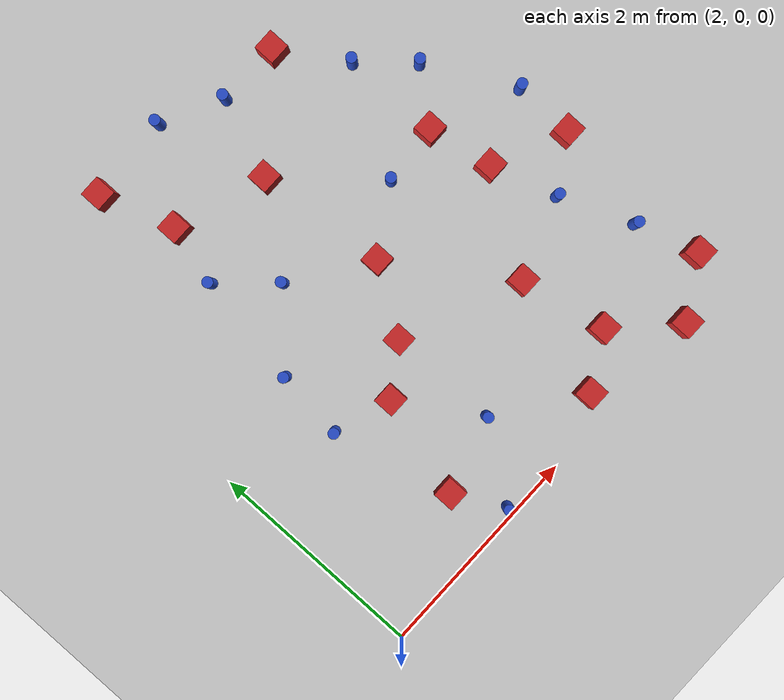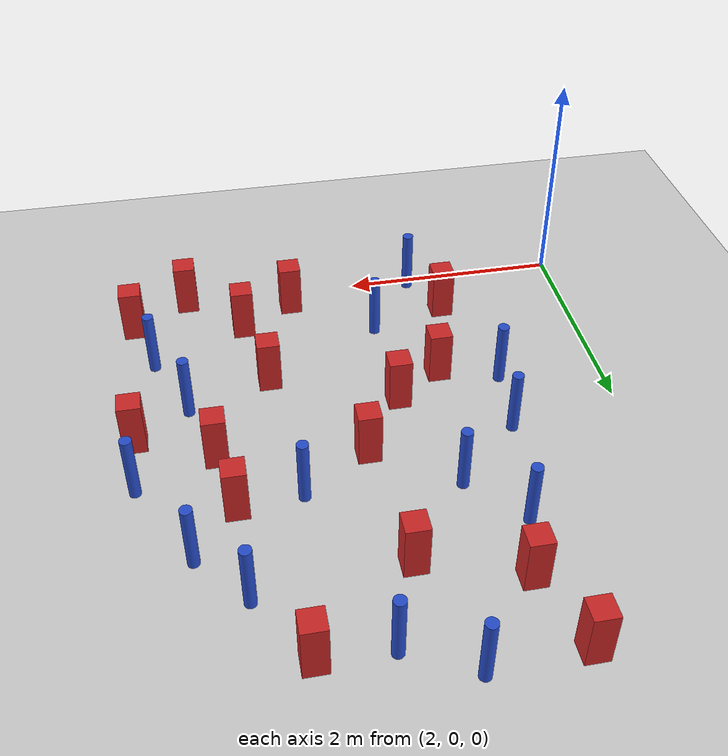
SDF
<sdf version="1.6">
 <world name="default">
  <model name="ground_plane">
   <static>1</static>
   <link name="link">
    <collision name="collision">
     <geometry><plane><normal>0 0 1</normal><size>100 100</size></plane></geometry>
     <surface><friction><ode><mu>100</mu><mu2>50</mu2></ode></friction></surface>
    </collision>
    <visual name="visual">
     <cast_shadows>0</cast_shadows>
     <geometry><plane><normal>0 0 1</normal><size>100 100</size></plane></geometry>
     <material>
      <ambient>1.0 1.0 1.0 1.0</ambient>
      <diffuse>0.8 0.8 0.8 1.0</diffuse>
      <specular>0.01 0.01 0.01 1.000000</specular>
     </material>
    </visual>
   </link>
  </model>
  <model name="pole_obstacle9">
   <static>true</static>
   <pose>3.17217486479 3.26888968128 2.88873142074e-08 -9.90536690232e-09 4.6021994898e-07 -1.20965994968e-07</pose>
   <link name="link">
    <pose>0 0 0.3 0 -0 0</pose>
    <inertial>
     <mass>1</mass>
     <inertia><ixx>0.145833</ixx><ixy>0</ixy><ixz>0</ixz><iyy>0.145833</iyy><iyz>0</iyz><izz>0.125</izz></inertia>
    </inertial>
    <collision name="collision">
     <geometry><cylinder><radius>0.05</radius><length>.6</length></cylinder></geometry>
    </collision>
    <visual name="visual">
     <geometry><cylinder><radius>0.05</radius><length>.6</length></cylinder></geometry>
     <material>
      <script><name>Gazebo/Blue</name><uri>file://media/materials/scripts/gazebo.material</uri></script>
     </material>
    </visual>
   </link>
  </model>
  <model name="square_post_obstacle22">
   <static>true</static>
   <pose>5.52658757177 2.16464236272 8.22691968438e-08 7.2212513382e-06 -7.54495500217e-07 2.29674213826e-05</pose>
   <link name="link">
    <pose>0 0 0.25 0 -0 0</pose>
    <inertial>
     <mass>100</mass>
     <inertia>
      <ixx>0.166667</ixx>
      <ixy>0</ixy>
      <ixz>0</ixz>
      <iyy>0.166667</iyy>
      <iyz>0</iyz>
      <izz>0.166667</izz>
     </inertia>
    </inertial>
    <collision name="collision"><geometry><box><size>.2 .2 .5</size></box></geometry></collision>
    <visual name="visual">
     <geometry><box><size>.2 .2 .5</size></box></geometry>
     <material>
      <script><name>Gazebo/Red</name><uri>file://media/materials/scripts/gazebo.material</uri></script>
     </material>
    </visual>
   </link>
  </model>
  <model name="pole_obstacle37">
   <static>true</static>
   <pose>4.43301625124 4.24000492616 2.88873142074e-08 -9.90536690842e-09 4.60219948965e-07 -1.20965994976e-07</pose>
   <link name="link">
    <pose>0 0 0.3 0 -0 0</pose>
    <inertial>
     <mass>1</mass>
     <inertia><ixx>0.145833</ixx><ixy>0</ixy><ixz>0</ixz><iyy>0.145833</iyy><iyz>0</iyz><izz>0.125</izz></inertia>
    </inertial>
    <collision name="collision">
     <geometry><cylinder><radius>0.05</radius><length>.6</length></cylinder></geometry>
    </collision>
    <visual name="visual">
     <geometry><cylinder><radius>0.05</radius><length>.6</length></cylinder></geometry>
     <material>
      <script><name>Gazebo/Blue</name><uri>file://media/materials/scripts/gazebo.material</uri></script>
     </material>
    </visual>
   </link>
  </model>
  <model name="pole_obstacle51">
   <static>true</static>
   <pose>5.99897427531 0.909110615569 2.88873142074e-08 -9.90536689837e-09 4.60219948989e-07 -1.2096599496e-07</pose>
   <link name="link">
    <pose>0 0 0.3 0 -0 0</pose>
    <inertial>
     <mass>1</mass>
     <inertia><ixx>0.145833</ixx><ixy>0</ixy><ixz>0</ixz><iyy>0.145833</iyy><iyz>0</iyz><izz>0.125</izz></inertia>
    </inertial>
    <collision name="collision">
     <geometry><cylinder><radius>0.05</radius><length>.6</length></cylinder></geometry>
    </collision>
    <visual name="visual">
     <geometry><cylinder><radius>0.05</radius><length>.6</length></cylinder></geometry>
     <material>
      <script><name>Gazebo/Blue</name><uri>file://media/materials/scripts/gazebo.material</uri></script>
     </material>
    </visual>
   </link>
  </model>
  <model name="pole_obstacle67">
   <static>true</static>
   <pose>3.88883415241 4.51918012956 2.88873142074e-08 -9.90536689859e-09 4.60219948989e-07 -1.20965994961e-07</pose>
   <link name="link">
    <pose>0 0 0.3 0 -0 0</pose>
    <inertial>
     <mass>1</mass>
     <inertia><ixx>0.145833</ixx><ixy>0</ixy><ixz>0</ixz><iyy>0.145833</iyy><iyz>0</iyz><izz>0.125</izz></inertia>
    </inertial>
    <collision name="collision">
     <geometry><cylinder><radius>0.05</radius><length>.6</length></cylinder></geometry>
    </collision>
    <visual name="visual">
     <geometry><cylinder><radius>0.05</radius><length>.6</length></cylinder></geometry>
     <material>
      <script><name>Gazebo/Blue</name><uri>file://media/materials/scripts/gazebo.material</uri></script>
     </material>
    </visual>
   </link>
  </model>
  <model name="square_post_obstacle61">
   <static>true</static>
   <pose>3.10391664014 4.47095767798 8.22691968438e-08 7.2212513382e-06 -7.54495500217e-07 2.29674213826e-05</pose>
   <link name="link">
    <pose>0 0 0.25 0 -0 0</pose>
    <inertial>
     <mass>100</mass>
     <inertia>
      <ixx>0.166667</ixx>
      <ixy>0</ixy>
      <ixz>0</ixz>
      <iyy>0.166667</iyy>
      <iyz>0</iyz>
      <izz>0.166667</izz>
     </inertia>
    </inertial>
    <collision name="collision"><geometry><box><size>.2 .2 .5</size></box></geometry></collision>
    <visual name="visual">
     <geometry><box><size>.2 .2 .5</size></box></geometry>
     <material>
      <script><name>Gazebo/Red</name><uri>file://media/materials/scripts/gazebo.material</uri></script>
     </material>
    </visual>
   </link>
  </model>
  <model name="pole_obstacle74">
   <static>true</static>
   <pose>6.19955153348 2.42457569844 2.88873142074e-08 -9.90536690245e-09 4.6021994898e-07 -1.20965994966e-07</pose>
   <link name="link">
    <pose>0 0 0.3 0 -0 0</pose>
    <inertial>
     <mass>1</mass>
     <inertia><ixx>0.145833</ixx><ixy>0</ixy><ixz>0</ixz><iyy>0.145833</iyy><iyz>0</iyz><izz>0.125</izz></inertia>
    </inertial>
    <collision name="collision">
     <geometry><cylinder><radius>0.05</radius><length>.6</length></cylinder></geometry>
    </collision>
    <visual name="visual">
     <geometry><cylinder><radius>0.05</radius><length>.6</length></cylinder></geometry>
     <material>
      <script><name>Gazebo/Blue</name><uri>file://media/materials/scripts/gazebo.material</uri></script>
     </material>
    </visual>
   </link>
  </model>
  <model name="pole_obstacle75">
   <static>true</static>
   <pose>5.77782669383 3.20611365357 2.88873142074e-08 -9.90536690245e-09 4.6021994898e-07 -1.20965994966e-07</pose>
   <link name="link">
    <pose>0 0 0.3 0 -0 0</pose>
    <inertial>
     <mass>1</mass>
     <inertia><ixx>0.145833</ixx><ixy>0</ixy><ixz>0</ixz><iyy>0.145833</iyy><iyz>0</iyz><izz>0.125</izz></inertia>
    </inertial>
    <collision name="collision">
     <geometry><cylinder><radius>0.05</radius><length>.6</length></cylinder></geometry>
    </collision>
    <visual name="visual">
     <geometry><cylinder><radius>0.05</radius><length>.6</length></cylinder></geometry>
     <material>
      <script><name>Gazebo/Blue</name><uri>file://media/materials/scripts/gazebo.material</uri></script>
     </material>
    </visual>
   </link>
  </model>
  <model name="square_post_obstacle66">
   <static>true</static>
   <pose>3.32431469081 3.80321081166 8.22691968438e-08 7.2212513382e-06 -7.54495500217e-07 2.29674213826e-05</pose>
   <link name="link">
    <pose>0 0 0.25 0 -0 0</pose>
    <inertial>
     <mass>100</mass>
     <inertia>
      <ixx>0.166667</ixx>
      <ixy>0</ixy>
      <ixz>0</ixz>
      <iyy>0.166667</iyy>
      <iyz>0</iyz>
      <izz>0.166667</izz>
     </inertia>
    </inertial>
    <collision name="collision"><geometry><box><size>.2 .2 .5</size></box></geometry></collision>
    <visual name="visual">
     <geometry><box><size>.2 .2 .5</size></box></geometry>
     <material>
      <script><name>Gazebo/Red</name><uri>file://media/materials/scripts/gazebo.material</uri></script>
     </material>
    </visual>
   </link>
  </model>
  <model name="square_post_obstacle72">
   <static>true</static>
   <pose>4.66032250065 0.225684437883 8.22691968438e-08 7.2212513382e-06 -7.54495500217e-07 2.29674213826e-05</pose>
   <link name="link">
    <pose>0 0 0.25 0 -0 0</pose>
    <inertial>
     <mass>100</mass>
     <inertia>
      <ixx>0.166667</ixx>
      <ixy>0</ixy>
      <ixz>0</ixz>
      <iyy>0.166667</iyy>
      <iyz>0</iyz>
      <izz>0.166667</izz>
     </inertia>
    </inertial>
    <collision name="collision"><geometry><box><size>.2 .2 .5</size></box></geometry></collision>
    <visual name="visual">
     <geometry><box><size>.2 .2 .5</size></box></geometry>
     <material>
      <script><name>Gazebo/Red</name><uri>file://media/materials/scripts/gazebo.material</uri></script>
     </material>
    </visual>
   </link>
  </model>
  <model name="pole_obstacle85">
   <static>true</static>
   <pose>5.72441869837 1.56464164884 2.88873142074e-08 -9.90536689445e-09 4.60219948999e-07 -1.20965994956e-07</pose>
   <link name="link">
    <pose>0 0 0.3 0 -0 0</pose>
    <inertial>
     <mass>1</mass>
     <inertia><ixx>0.145833</ixx><ixy>0</ixy><ixz>0</ixz><iyy>0.145833</iyy><iyz>0</iyz><izz>0.125</izz></inertia>
    </inertial>
    <collision name="collision">
     <geometry><cylinder><radius>0.05</radius><length>.6</length></cylinder></geometry>
    </collision>
    <visual name="visual">
     <geometry><cylinder><radius>0.05</radius><length>.6</length></cylinder></geometry>
     <material>
      <script><name>Gazebo/Blue</name><uri>file://media/materials/scripts/gazebo.material</uri></script>
     </material>
    </visual>
   </link>
  </model>
  <model name="square_post_obstacle74">
   <static>true</static>
   <pose>3.22321845449 0.540519343599 8.22691968438e-08 7.2212513382e-06 -7.54495500217e-07 2.29674213826e-05</pose>
   <link name="link">
    <pose>0 0 0.25 0 -0 0</pose>
    <inertial>
     <mass>100</mass>
     <inertia>
      <ixx>0.166667</ixx>
      <ixy>0</ixy>
      <ixz>0</ixz>
      <iyy>0.166667</iyy>
      <iyz>0</iyz>
      <izz>0.166667</izz>
     </inertia>
    </inertial>
    <collision name="collision"><geometry><box><size>.2 .2 .5</size></box></geometry></collision>
    <visual name="visual">
     <geometry><box><size>.2 .2 .5</size></box></geometry>
     <material>
      <script><name>Gazebo/Red</name><uri>file://media/materials/scripts/gazebo.material</uri></script>
     </material>
    </visual>
   </link>
  </model>
  <model name="pole_obstacle88">
   <static>true</static>
   <pose>3.58993427599 2.8113896839 2.88873142074e-08 -9.90536690232e-09 4.6021994898e-07 -1.20965994968e-07</pose>
   <link name="link">
    <pose>0 0 0.3 0 -0 0</pose>
    <inertial>
     <mass>1</mass>
     <inertia><ixx>0.145833</ixx><ixy>0</ixy><ixz>0</ixz><iyy>0.145833</iyy><iyz>0</iyz><izz>0.125</izz></inertia>
    </inertial>
    <collision name="collision">
     <geometry><cylinder><radius>0.05</radius><length>.6</length></cylinder></geometry>
    </collision>
    <visual name="visual">
     <geometry><cylinder><radius>0.05</radius><length>.6</length></cylinder></geometry>
     <material>
      <script><name>Gazebo/Blue</name><uri>file://media/materials/scripts/gazebo.material</uri></script>
     </material>
    </visual>
   </link>
  </model>
  <model name="square_post_obstacle75">
   <static>true</static>
   <pose>5.01402339134 4.21396589467 8.22691968438e-08 7.2212513382e-06 -7.54495500217e-07 2.29674213826e-05</pose>
   <link name="link">
    <pose>0 0 0.25 0 -0 0</pose>
    <inertial>
     <mass>100</mass>
     <inertia>
      <ixx>0.166667</ixx>
      <ixy>0</ixy>
      <ixz>0</ixz>
      <iyy>0.166667</iyy>
      <iyz>0</iyz>
      <izz>0.166667</izz>
     </inertia>
    </inertial>
    <collision name="collision"><geometry><box><size>.2 .2 .5</size></box></geometry></collision>
    <visual name="visual">
     <geometry><box><size>.2 .2 .5</size></box></geometry>
     <material>
      <script><name>Gazebo/Red</name><uri>file://media/materials/scripts/gazebo.material</uri></script>
     </material>
    </visual>
   </link>
  </model>
  <model name="square_post_obstacle78">
   <static>true</static>
   <pose>4.28103848278 2.34072129161 8.22691968438e-08 7.2212513382e-06 -7.54495500217e-07 2.29674213826e-05</pose>
   <link name="link">
    <pose>0 0 0.25 0 -0 0</pose>
    <inertial>
     <mass>100</mass>
     <inertia>
      <ixx>0.166667</ixx>
      <ixy>0</ixy>
      <ixz>0</ixz>
      <iyy>0.166667</iyy>
      <iyz>0</iyz>
      <izz>0.166667</izz>
     </inertia>
    </inertial>
    <collision name="collision"><geometry><box><size>.2 .2 .5</size></box></geometry></collision>
    <visual name="visual">
     <geometry><box><size>.2 .2 .5</size></box></geometry>
     <material>
      <script><name>Gazebo/Red</name><uri>file://media/materials/scripts/gazebo.material</uri></script>
     </material>
    </visual>
   </link>
  </model>
  <model name="square_post_obstacle87">
   <static>true</static>
   <pose>5.6533069034 0.025624023455 8.22691968438e-08 7.2212513382e-06 -7.54495500217e-07 2.29674213826e-05</pose>
   <link name="link">
    <pose>0 0 0.25 0 -0 0</pose>
    <inertial>
     <mass>100</mass>
     <inertia>
      <ixx>0.166667</ixx>
      <ixy>0</ixy>
      <ixz>0</ixz>
      <iyy>0.166667</iyy>
      <iyz>0</iyz>
      <izz>0.166667</izz>
     </inertia>
    </inertial>
    <collision name="collision"><geometry><box><size>.2 .2 .5</size></box></geometry></collision>
    <visual name="visual">
     <geometry><box><size>.2 .2 .5</size></box></geometry>
     <material>
      <script><name>Gazebo/Red</name><uri>file://media/materials/scripts/gazebo.material</uri></script>
     </material>
    </visual>
   </link>
  </model>
  <model name="square_post_obstacle92">
   <static>true</static>
   <pose>3.47308781892 1.4529752627 8.22691968438e-08 7.2212513382e-06 -7.54495500217e-07 2.29674213826e-05</pose>
   <link name="link">
    <pose>0 0 0.25 0 -0 0</pose>
    <inertial>
     <mass>100</mass>
     <inertia>
      <ixx>0.166667</ixx>
      <ixy>0</ixy>
      <ixz>0</ixz>
      <iyy>0.166667</iyy>
      <iyz>0</iyz>
      <izz>0.166667</izz>
     </inertia>
    </inertial>
    <collision name="collision"><geometry><box><size>.2 .2 .5</size></box></geometry></collision>
    <visual name="visual">
     <geometry><box><size>.2 .2 .5</size></box></geometry>
     <material>
      <script><name>Gazebo/Red</name><uri>file://media/materials/scripts/gazebo.material</uri></script>
     </material>
    </visual>
   </link>
  </model>
  <model name="square_post_obstacle93">
   <static>true</static>
   <pose>4.16055816285 3.52481038271 8.22691968438e-08 7.2212513382e-06 -7.54495500217e-07 2.29674213826e-05</pose>
   <link name="link">
    <pose>0 0 0.25 0 -0 0</pose>
    <inertial>
     <mass>100</mass>
     <inertia>
      <ixx>0.166667</ixx>
      <ixy>0</ixy>
      <ixz>0</ixz>
      <iyy>0.166667</iyy>
      <iyz>0</iyz>
      <izz>0.166667</izz>
     </inertia>
    </inertial>
    <collision name="collision"><geometry><box><size>.2 .2 .5</size></box></geometry></collision>
    <visual name="visual">
     <geometry><box><size>.2 .2 .5</size></box></geometry>
     <material>
      <script><name>Gazebo/Red</name><uri>file://media/materials/scripts/gazebo.material</uri></script>
     </material>
    </visual>
   </link>
  </model>
  <model name="square_post_obstacle97">
   <static>true</static>
   <pose>4.98667365181 1.29990823488 8.22691968438e-08 7.2212513382e-06 -7.54495500217e-07 2.29674213826e-05</pose>
   <link name="link">
    <pose>0 0 0.25 0 -0 0</pose>
    <inertial>
     <mass>100</mass>
     <inertia>
      <ixx>0.166667</ixx>
      <ixy>0</ixy>
      <ixz>0</ixz>
      <iyy>0.166667</iyy>
      <iyz>0</iyz>
      <izz>0.166667</izz>
     </inertia>
    </inertial>
    <collision name="collision"><geometry><box><size>.2 .2 .5</size></box></geometry></collision>
    <visual name="visual">
     <geometry><box><size>.2 .2 .5</size></box></geometry>
     <material>
      <script><name>Gazebo/Red</name><uri>file://media/materials/scripts/gazebo.material</uri></script>
     </material>
    </visual>
   </link>
  </model>
  <model name="pole_obstacle105">
   <static>true</static>
   <pose>5.39432647153 3.64181544365 2.88873142074e-08 -9.90536690245e-09 4.6021994898e-07 -1.20965994966e-07</pose>
   <link name="link">
    <pose>0 0 0.3 0 -0 0</pose>
    <inertial>
     <mass>1</mass>
     <inertia><ixx>0.145833</ixx><ixy>0</ixy><ixz>0</ixz><iyy>0.145833</iyy><iyz>0</iyz><izz>0.125</izz></inertia>
    </inertial>
    <collision name="collision">
     <geometry><cylinder><radius>0.05</radius><length>.6</length></cylinder></geometry>
    </collision>
    <visual name="visual">
     <geometry><cylinder><radius>0.05</radius><length>.6</length></cylinder></geometry>
     <material>
      <script><name>Gazebo/Blue</name><uri>file://media/materials/scripts/gazebo.material</uri></script>
     </material>
    </visual>
   </link>
  </model>
  <model name="pole_obstacle110">
   <static>true</static>
   <pose>3.00503588919 2.25406335023 2.88873142074e-08 -9.90536690232e-09 4.6021994898e-07 -1.20965994968e-07</pose>
   <link name="link">
    <pose>0 0 0.3 0 -0 0</pose>
    <inertial>
     <mass>1</mass>
     <inertia><ixx>0.145833</ixx><ixy>0</ixy><ixz>0</ixz><iyy>0.145833</iyy><iyz>0</iyz><izz>0.125</izz></inertia>
    </inertial>
    <collision name="collision">
     <geometry><cylinder><radius>0.05</radius><length>.6</length></cylinder></geometry>
    </collision>
    <visual name="visual">
     <geometry><cylinder><radius>0.05</radius><length>.6</length></cylinder></geometry>
     <material>
      <script><name>Gazebo/Blue</name><uri>file://media/materials/scripts/gazebo.material</uri></script>
     </material>
    </visual>
   </link>
  </model>
  <model name="square_post_obstacle106">
   <static>true</static>
   <pose>5.41259375243 2.75678490365 8.22691968438e-08 7.2212513382e-06 -7.54495500217e-07 2.29674213826e-05</pose>
   <link name="link">
    <pose>0 0 0.25 0 -0 0</pose>
    <inertial>
     <mass>100</mass>
     <inertia>
      <ixx>0.166667</ixx>
      <ixy>0</ixy>
      <ixz>0</ixz>
      <iyy>0.166667</iyy>
      <iyz>0</iyz>
      <izz>0.166667</izz>
     </inertia>
    </inertial>
    <collision name="collision"><geometry><box><size>.2 .2 .5</size></box></geometry></collision>
    <visual name="visual">
     <geometry><box><size>.2 .2 .5</size></box></geometry>
     <material>
      <script><name>Gazebo/Red</name><uri>file://media/materials/scripts/gazebo.material</uri></script>
     </material>
    </visual>
   </link>
  </model>
  <model name="pole_obstacle120">
   <static>true</static>
   <pose>4.86792853058 2.71442543391 2.88873142074e-08 -9.90536690245e-09 4.6021994898e-07 -1.20965994966e-07</pose>
   <link name="link">
    <pose>0 0 0.3 0 -0 0</pose>
    <inertial>
     <mass>1</mass>
     <inertia><ixx>0.145833</ixx><ixy>0</ixy><ixz>0</ixz><iyy>0.145833</iyy><iyz>0</iyz><izz>0.125</izz></inertia>
    </inertial>
    <collision name="collision">
     <geometry><cylinder><radius>0.05</radius><length>.6</length></cylinder></geometry>
    </collision>
    <visual name="visual">
     <geometry><cylinder><radius>0.05</radius><length>.6</length></cylinder></geometry>
     <material>
      <script><name>Gazebo/Blue</name><uri>file://media/materials/scripts/gazebo.material</uri></script>
     </material>
    </visual>
   </link>
  </model>
  <model name="pole_obstacle125">
   <static>true</static>
   <pose>3.91704493238 0.74337601912 2.88873142074e-08 -9.90536689285e-09 4.60219949002e-07 -1.20965994953e-07</pose>
   <link name="link">
    <pose>0 0 0.3 0 -0 0</pose>
    <inertial>
     <mass>1</mass>
     <inertia><ixx>0.145833</ixx><ixy>0</ixy><ixz>0</ixz><iyy>0.145833</iyy><iyz>0</iyz><izz>0.125</izz></inertia>
    </inertial>
    <collision name="collision">
     <geometry><cylinder><radius>0.05</radius><length>.6</length></cylinder></geometry>
    </collision>
    <visual name="visual">
     <geometry><cylinder><radius>0.05</radius><length>.6</length></cylinder></geometry>
     <material>
      <script><name>Gazebo/Blue</name><uri>file://media/materials/scripts/gazebo.material</uri></script>
     </material>
    </visual>
   </link>
  </model>
  <model name="square_post_obstacle124">
   <static>true</static>
   <pose>3.89931540809 1.74521477832 8.22691968438e-08 7.2212513382e-06 -7.54495500217e-07 2.29674213826e-05</pose>
   <link name="link">
    <pose>0 0 0.25 0 -0 0</pose>
    <inertial>
     <mass>100</mass>
     <inertia>
      <ixx>0.166667</ixx>
      <ixy>0</ixy>
      <ixz>0</ixz>
      <iyy>0.166667</iyy>
      <iyz>0</iyz>
      <izz>0.166667</izz>
     </inertia>
    </inertial>
    <collision name="collision"><geometry><box><size>.2 .2 .5</size></box></geometry></collision>
    <visual name="visual">
     <geometry><box><size>.2 .2 .5</size></box></geometry>
     <material>
      <script><name>Gazebo/Red</name><uri>file://media/materials/scripts/gazebo.material</uri></script>
     </material>
    </visual>
   </link>
  </model>
  <model name="square_post_obstacle127">
   <static>true</static>
   <pose>6.17030028586 0.345552422571 8.22691968438e-08 7.2212513382e-06 -7.54495500217e-07 2.29674213826e-05</pose>
   <link name="link">
    <pose>0 0 0.25 0 -0 0</pose>
    <inertial>
     <mass>100</mass>
     <inertia>
      <ixx>0.166667</ixx>
      <ixy>0</ixy>
      <ixz>0</ixz>
      <iyy>0.166667</iyy>
      <iyz>0</iyz>
      <izz>0.166667</izz>
     </inertia>
    </inertial>
    <collision name="collision"><geometry><box><size>.2 .2 .5</size></box></geometry></collision>
    <visual name="visual">
     <geometry><box><size>.2 .2 .5</size></box></geometry>
     <material>
      <script><name>Gazebo/Red</name><uri>file://media/materials/scripts/gazebo.material</uri></script>
     </material>
    </visual>
   </link>
  </model>
  <model name="square_post_obstacle184">
   <static>true</static>
   <pose>6.18875972915 1.87262995658 8.22691968438e-08 7.2212513382e-06 -7.54495500217e-07 2.29674213826e-05</pose>
   <link name="link">
    <pose>0 0 0.25 0 -0 0</pose>
    <inertial>
     <mass>100</mass>
     <inertia>
      <ixx>0.166667</ixx>
      <ixy>0</ixy>
      <ixz>0</ixz>
      <iyy>0.166667</iyy>
      <iyz>0</iyz>
      <izz>0.166667</izz>
     </inertia>
    </inertial>
    <collision name="collision"><geometry><box><size>.2 .2 .5</size></box></geometry></collision>
    <visual name="visual">
     <geometry><box><size>.2 .2 .5</size></box></geometry>
     <material>
      <script><name>Gazebo/Red</name><uri>file://media/materials/scripts/gazebo.material</uri></script>
     </material>
    </visual>
   </link>
  </model>
  <model name="square_post_obstacle196">
   <static>true</static>
   <pose>5.14694143408 0.512362330441 8.22691968438e-08 7.2212513382e-06 -7.54495500217e-07 2.29674213826e-05</pose>
   <link name="link">
    <pose>0 0 0.25 0 -0 0</pose>
    <inertial>
     <mass>100</mass>
     <inertia>
      <ixx>0.166667</ixx>
      <ixy>0</ixy>
      <ixz>0</ixz>
      <iyy>0.166667</iyy>
      <iyz>0</iyz>
      <izz>0.166667</izz>
     </inertia>
    </inertial>
    <collision name="collision"><geometry><box><size>.2 .2 .5</size></box></geometry></collision>
    <visual name="visual">
     <geometry><box><size>.2 .2 .5</size></box></geometry>
     <material>
      <script><name>Gazebo/Red</name><uri>file://media/materials/scripts/gazebo.material</uri></script>
     </material>
    </visual>
   </link>
  </model>
  <model name="pole_obstacle196">
   <static>true</static>
   <pose>3.45650822548 0.0845775917198 2.88873142074e-08 -9.90536691979e-09 4.60219948939e-07 -1.20965994984e-07</pose>
   <link name="link">
    <pose>0 0 0.3 0 -0 0</pose>
    <inertial>
     <mass>1</mass>
     <inertia><ixx>0.145833</ixx><ixy>0</ixy><ixz>0</ixz><iyy>0.145833</iyy><iyz>0</iyz><izz>0.125</izz></inertia>
    </inertial>
    <collision name="collision">
     <geometry><cylinder><radius>0.05</radius><length>.6</length></cylinder></geometry>
    </collision>
    <visual name="visual">
     <geometry><cylinder><radius>0.05</radius><length>.6</length></cylinder></geometry>
     <material>
      <script><name>Gazebo/Blue</name><uri>file://media/materials/scripts/gazebo.material</uri></script>
     </material>
    </visual>
   </link>
  </model>
  <model name="pole_obstacle237">
   <static>true</static>
   <pose>2.94013000913 1.62112002041 2.88873142074e-08 -9.90536689395e-09 4.60219949e-07 -1.20965994953e-07</pose>
   <link name="link">
    <pose>0 0 0.3 0 -0 0</pose>
    <inertial>
     <mass>1</mass>
     <inertia><ixx>0.145833</ixx><ixy>0</ixy><ixz>0</ixz><iyy>0.145833</iyy><iyz>0</iyz><izz>0.125</izz></inertia>
    </inertial>
    <collision name="collision">
     <geometry><cylinder><radius>0.05</radius><length>.6</length></cylinder></geometry>
    </collision>
    <visual name="visual">
     <geometry><cylinder><radius>0.05</radius><length>.6</length></cylinder></geometry>
     <material>
      <script><name>Gazebo/Blue</name><uri>file://media/materials/scripts/gazebo.material</uri></script>
     </material>
    </visual>
   </link>
  </model>
 </world>
</sdf>
